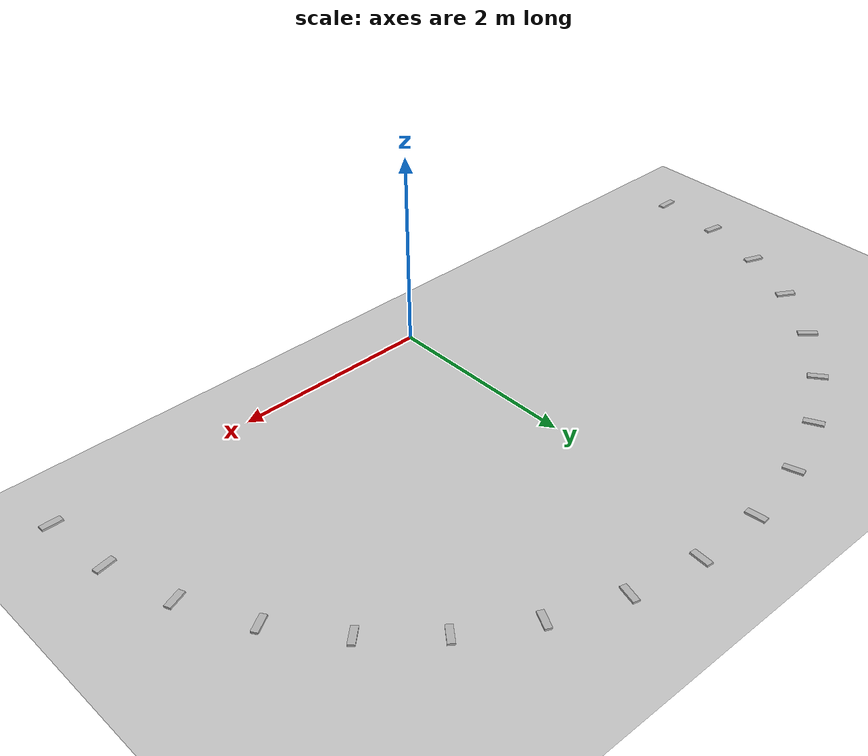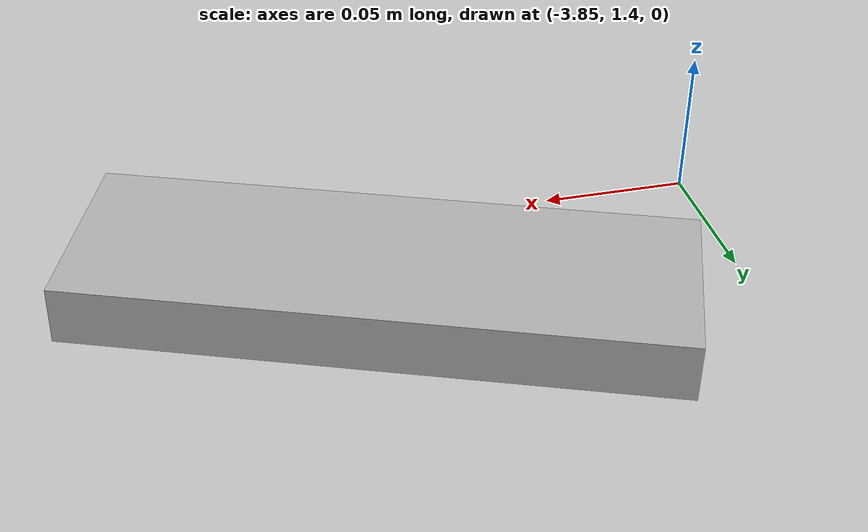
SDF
<?xml version="1.0" ?>

<sdf version="1.5">
  <world name="default">
    <include>
      <uri>model://ground_plane</uri>
    </include>
    <include>
      <uri>model://sun</uri>
    </include>

    <model name='box_1'>
      <pose>4.0 0.0 0.01 0 0 0.0</pose>
      <link name="link">
        <inertial>
          <mass>0.72</mass>
          <inertia>
            <ixx>0.00029066666666666667</ixx>
            <iyy>0.0024240000000000004</iyy>
            <izz>0.002666666666666667</izz>
            <ixy>0.0</ixy>
            <ixz>0.0</ixz>
            <iyz>0.0</iyz>
          </inertia>
        </inertial>
        <collision name="collision">
          <geometry>
            <box>
              <size>0.2 0.06666666666666667 0.02</size>
            </box>
          </geometry>
        </collision>
        <visual name="visual">
          <geometry>
            <box>
              <size>0.2 0.06666666666666667 0.02</size>
            </box>
          </geometry>
        </visual>
      </link>
    </model>

    <model name='box_2'>
      <pose>3.931892398735607 0.7349980712662814 0.01 0 0 0.18479956785822313</pose>
      <link name="link">
        <inertial>
          <mass>0.72</mass>
          <inertia>
            <ixx>0.00029066666666666667</ixx>
            <iyy>0.0024240000000000004</iyy>
            <izz>0.002666666666666667</izz>
            <ixy>0.0</ixy>
            <ixz>0.0</ixz>
            <iyz>0.0</iyz>
          </inertia>
        </inertial>
        <collision name="collision">
          <geometry>
            <box>
              <size>0.2 0.06666666666666667 0.02</size>
            </box>
          </geometry>
        </collision>
        <visual name="visual">
          <geometry>
            <box>
              <size>0.2 0.06666666666666667 0.02</size>
            </box>
          </geometry>
        </visual>
      </link>
    </model>

    <model name='box_3'>
      <pose>3.7298889176174232 1.4449666647486117 0.01 0 0 0.36959913571644626</pose>
      <link name="link">
        <inertial>
          <mass>0.72</mass>
          <inertia>
            <ixx>0.00029066666666666667</ixx>
            <iyy>0.0024240000000000004</iyy>
            <izz>0.002666666666666667</izz>
            <ixy>0.0</ixy>
            <ixz>0.0</ixz>
            <iyz>0.0</iyz>
          </inertia>
        </inertial>
        <collision name="collision">
          <geometry>
            <box>
              <size>0.2 0.06666666666666667 0.02</size>
            </box>
          </geometry>
        </collision>
        <visual name="visual">
          <geometry>
            <box>
              <size>0.2 0.06666666666666667 0.02</size>
            </box>
          </geometry>
        </visual>
      </link>
    </model>

    <model name='box_4'>
      <pose>3.400868542918457 2.105728651509423 0.01 0 0 0.5543987035746694</pose>
      <link name="link">
        <inertial>
          <mass>0.72</mass>
          <inertia>
            <ixx>0.00029066666666666667</ixx>
            <iyy>0.0024240000000000004</iyy>
            <izz>0.002666666666666667</izz>
            <ixy>0.0</ixy>
            <ixz>0.0</ixz>
            <iyz>0.0</iyz>
          </inertia>
        </inertial>
        <collision name="collision">
          <geometry>
            <box>
              <size>0.2 0.06666666666666667 0.02</size>
            </box>
          </geometry>
        </collision>
        <visual name="visual">
          <geometry>
            <box>
              <size>0.2 0.06666666666666667 0.02</size>
            </box>
          </geometry>
        </visual>
      </link>
    </model>

    <model name='box_5'>
      <pose>2.9560356688826364 2.694782574586229 0.01 0 0 0.7391982714328925</pose>
      <link name="link">
        <inertial>
          <mass>0.72</mass>
          <inertia>
            <ixx>0.00029066666666666667</ixx>
            <iyy>0.0024240000000000004</iyy>
            <izz>0.002666666666666667</izz>
            <ixy>0.0</ixy>
            <ixz>0.0</ixz>
            <iyz>0.0</iyz>
          </inertia>
        </inertial>
        <collision name="collision">
          <geometry>
            <box>
              <size>0.2 0.06666666666666667 0.02</size>
            </box>
          </geometry>
        </collision>
        <visual name="visual">
          <geometry>
            <box>
              <size>0.2 0.06666666666666667 0.02</size>
            </box>
          </geometry>
        </visual>
      </link>
    </model>

    <model name='box_6'>
      <pose>2.4105385455170256 3.192068909120958 0.01 0 0 0.9239978392911157</pose>
      <link name="link">
        <inertial>
          <mass>0.72</mass>
          <inertia>
            <ixx>0.00029066666666666667</ixx>
            <iyy>0.0024240000000000004</iyy>
            <izz>0.002666666666666667</izz>
            <ixy>0.0</ixy>
            <ixz>0.0</ixz>
            <iyz>0.0</iyz>
          </inertia>
        </inertial>
        <collision name="collision">
          <geometry>
            <box>
              <size>0.2 0.06666666666666667 0.02</size>
            </box>
          </geometry>
        </collision>
        <visual name="visual">
          <geometry>
            <box>
              <size>0.2 0.06666666666666667 0.02</size>
            </box>
          </geometry>
        </visual>
      </link>
    </model>

    <model name='box_7'>
      <pose>1.7829534231061532 3.5806531654202494 0.01 0 0 1.1087974071493387</pose>
      <link name="link">
        <inertial>
          <mass>0.72</mass>
          <inertia>
            <ixx>0.00029066666666666667</ixx>
            <iyy>0.0024240000000000004</iyy>
            <izz>0.002666666666666667</izz>
            <ixy>0.0</ixy>
            <ixz>0.0</ixz>
            <iyz>0.0</iyz>
          </inertia>
        </inertial>
        <collision name="collision">
          <geometry>
            <box>
              <size>0.2 0.06666666666666667 0.02</size>
            </box>
          </geometry>
        </collision>
        <visual name="visual">
          <geometry>
            <box>
              <size>0.2 0.06666666666666667 0.02</size>
            </box>
          </geometry>
        </visual>
      </link>
    </model>

    <model name='box_8'>
      <pose>1.094651960288332 3.847302572691276 0.01 0 0 1.2935969750075618</pose>
      <link name="link">
        <inertial>
          <mass>0.72</mass>
          <inertia>
            <ixx>0.00029066666666666667</ixx>
            <iyy>0.0024240000000000004</iyy>
            <izz>0.002666666666666667</izz>
            <ixy>0.0</ixy>
            <ixz>0.0</ixz>
            <iyz>0.0</iyz>
          </inertia>
        </inertial>
        <collision name="collision">
          <geometry>
            <box>
              <size>0.2 0.06666666666666667 0.02</size>
            </box>
          </geometry>
        </collision>
        <visual name="visual">
          <geometry>
            <box>
              <size>0.2 0.06666666666666667 0.02</size>
            </box>
          </geometry>
        </visual>
      </link>
    </model>

    <model name='box_9'>
      <pose>0.369073437853208 3.982936705180138 0.01 0 0 1.478396542865785</pose>
      <link name="link">
        <inertial>
          <mass>0.72</mass>
          <inertia>
            <ixx>0.00029066666666666667</ixx>
            <iyy>0.0024240000000000004</iyy>
            <izz>0.002666666666666667</izz>
            <ixy>0.0</ixy>
            <ixz>0.0</ixz>
            <iyz>0.0</iyz>
          </inertia>
        </inertial>
        <collision name="collision">
          <geometry>
            <box>
              <size>0.2 0.06666666666666667 0.02</size>
            </box>
          </geometry>
        </collision>
        <visual name="visual">
          <geometry>
            <box>
              <size>0.2 0.06666666666666667 0.02</size>
            </box>
          </geometry>
        </visual>
      </link>
    </model>

    <model name='box_10'>
      <pose>-0.36907343785320756 3.9829367051801383 0.01 0 0 1.663196110724008</pose>
      <link name="link">
        <inertial>
          <mass>0.72</mass>
          <inertia>
            <ixx>0.00029066666666666667</ixx>
            <iyy>0.0024240000000000004</iyy>
            <izz>0.002666666666666667</izz>
            <ixy>0.0</ixy>
            <ixz>0.0</ixz>
            <iyz>0.0</iyz>
          </inertia>
        </inertial>
        <collision name="collision">
          <geometry>
            <box>
              <size>0.2 0.06666666666666667 0.02</size>
            </box>
          </geometry>
        </collision>
        <visual name="visual">
          <geometry>
            <box>
              <size>0.2 0.06666666666666667 0.02</size>
            </box>
          </geometry>
        </visual>
      </link>
    </model>

    <model name='box_11'>
      <pose>-1.0946519602883316 3.847302572691276 0.01 0 0 1.8479956785822313</pose>
      <link name="link">
        <inertial>
          <mass>0.72</mass>
          <inertia>
            <ixx>0.00029066666666666667</ixx>
            <iyy>0.0024240000000000004</iyy>
            <izz>0.002666666666666667</izz>
            <ixy>0.0</ixy>
            <ixz>0.0</ixz>
            <iyz>0.0</iyz>
          </inertia>
        </inertial>
        <collision name="collision">
          <geometry>
            <box>
              <size>0.2 0.06666666666666667 0.02</size>
            </box>
          </geometry>
        </collision>
        <visual name="visual">
          <geometry>
            <box>
              <size>0.2 0.06666666666666667 0.02</size>
            </box>
          </geometry>
        </visual>
      </link>
    </model>

    <model name='box_12'>
      <pose>-1.7829534231061512 3.5806531654202503 0.01 0 0 2.032795246440454</pose>
      <link name="link">
        <inertial>
          <mass>0.72</mass>
          <inertia>
            <ixx>0.00029066666666666667</ixx>
            <iyy>0.0024240000000000004</iyy>
            <izz>0.002666666666666667</izz>
            <ixy>0.0</ixy>
            <ixz>0.0</ixz>
            <iyz>0.0</iyz>
          </inertia>
        </inertial>
        <collision name="collision">
          <geometry>
            <box>
              <size>0.2 0.06666666666666667 0.02</size>
            </box>
          </geometry>
        </collision>
        <visual name="visual">
          <geometry>
            <box>
              <size>0.2 0.06666666666666667 0.02</size>
            </box>
          </geometry>
        </visual>
      </link>
    </model>

    <model name='box_13'>
      <pose>-2.410538545517025 3.1920689091209584 0.01 0 0 2.2175948142986774</pose>
      <link name="link">
        <inertial>
          <mass>0.72</mass>
          <inertia>
            <ixx>0.00029066666666666667</ixx>
            <iyy>0.0024240000000000004</iyy>
            <izz>0.002666666666666667</izz>
            <ixy>0.0</ixy>
            <ixz>0.0</ixz>
            <iyz>0.0</iyz>
          </inertia>
        </inertial>
        <collision name="collision">
          <geometry>
            <box>
              <size>0.2 0.06666666666666667 0.02</size>
            </box>
          </geometry>
        </collision>
        <visual name="visual">
          <geometry>
            <box>
              <size>0.2 0.06666666666666667 0.02</size>
            </box>
          </geometry>
        </visual>
      </link>
    </model>

    <model name='box_14'>
      <pose>-2.9560356688826372 2.6947825745862284 0.01 0 0 2.402394382156901</pose>
      <link name="link">
        <inertial>
          <mass>0.72</mass>
          <inertia>
            <ixx>0.00029066666666666667</ixx>
            <iyy>0.0024240000000000004</iyy>
            <izz>0.002666666666666667</izz>
            <ixy>0.0</ixy>
            <ixz>0.0</ixz>
            <iyz>0.0</iyz>
          </inertia>
        </inertial>
        <collision name="collision">
          <geometry>
            <box>
              <size>0.2 0.06666666666666667 0.02</size>
            </box>
          </geometry>
        </collision>
        <visual name="visual">
          <geometry>
            <box>
              <size>0.2 0.06666666666666667 0.02</size>
            </box>
          </geometry>
        </visual>
      </link>
    </model>

    <model name='box_15'>
      <pose>-3.400868542918456 2.1057286515094242 0.01 0 0 2.5871939500151235</pose>
      <link name="link">
        <inertial>
          <mass>0.72</mass>
          <inertia>
            <ixx>0.00029066666666666667</ixx>
            <iyy>0.0024240000000000004</iyy>
            <izz>0.002666666666666667</izz>
            <ixy>0.0</ixy>
            <ixz>0.0</ixz>
            <iyz>0.0</iyz>
          </inertia>
        </inertial>
        <collision name="collision">
          <geometry>
            <box>
              <size>0.2 0.06666666666666667 0.02</size>
            </box>
          </geometry>
        </collision>
        <visual name="visual">
          <geometry>
            <box>
              <size>0.2 0.06666666666666667 0.02</size>
            </box>
          </geometry>
        </visual>
      </link>
    </model>

    <model name='box_16'>
      <pose>-3.729888917617423 1.4449666647486132 0.01 0 0 2.7719935178733466</pose>
      <link name="link">
        <inertial>
          <mass>0.72</mass>
          <inertia>
            <ixx>0.00029066666666666667</ixx>
            <iyy>0.0024240000000000004</iyy>
            <izz>0.002666666666666667</izz>
            <ixy>0.0</ixy>
            <ixz>0.0</ixz>
            <iyz>0.0</iyz>
          </inertia>
        </inertial>
        <collision name="collision">
          <geometry>
            <box>
              <size>0.2 0.06666666666666667 0.02</size>
            </box>
          </geometry>
        </collision>
        <visual name="visual">
          <geometry>
            <box>
              <size>0.2 0.06666666666666667 0.02</size>
            </box>
          </geometry>
        </visual>
      </link>
    </model>

    <model name='box_17'>
      <pose>-3.931892398735607 0.7349980712662815 0.01 0 0 2.95679308573157</pose>
      <link name="link">
        <inertial>
          <mass>0.72</mass>
          <inertia>
            <ixx>0.00029066666666666667</ixx>
            <iyy>0.0024240000000000004</iyy>
            <izz>0.002666666666666667</izz>
            <ixy>0.0</ixy>
            <ixz>0.0</ixz>
            <iyz>0.0</iyz>
          </inertia>
        </inertial>
        <collision name="collision">
          <geometry>
            <box>
              <size>0.2 0.06666666666666667 0.02</size>
            </box>
          </geometry>
        </collision>
        <visual name="visual">
          <geometry>
            <box>
              <size>0.2 0.06666666666666667 0.02</size>
            </box>
          </geometry>
        </visual>
      </link>
    </model>

    <model name='box_18'>
      <pose>-4.0 4.898587196589413e-16 0.01 0 0 3.141592653589793</pose>
      <link name="link">
        <inertial>
          <mass>0.72</mass>
          <inertia>
            <ixx>0.00029066666666666667</ixx>
            <iyy>0.0024240000000000004</iyy>
            <izz>0.002666666666666667</izz>
            <ixy>0.0</ixy>
            <ixz>0.0</ixz>
            <iyz>0.0</iyz>
          </inertia>
        </inertial>
        <collision name="collision">
          <geometry>
            <box>
              <size>0.2 0.06666666666666667 0.02</size>
            </box>
          </geometry>
        </collision>
        <visual name="visual">
          <geometry>
            <box>
              <size>0.2 0.06666666666666667 0.02</size>
            </box>
          </geometry>
        </visual>
      </link>
    </model>

  </world>
</sdf>
